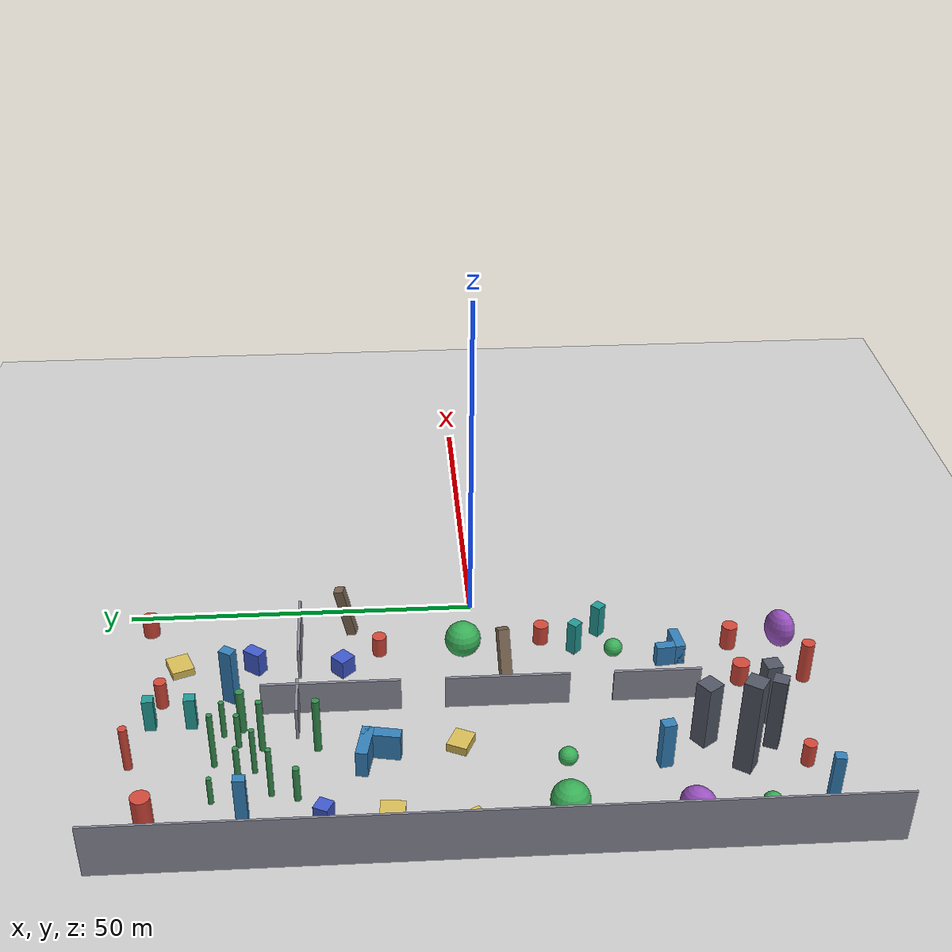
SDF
<sdf version="1.9">
 <world name="dwa_complex">
  <model name="ground_plane">
   <static>true</static>
   <link name="link">
    <collision name="collision">
     <geometry><plane><normal>0 0 1</normal><size>1 1</size></plane></geometry>
    </collision>
    <visual name="visual">
     <geometry><plane><normal>0 0 1</normal><size>110 110</size></plane></geometry>
     <material>
      <ambient>0.8 0.8 0.8 1</ambient>
      <diffuse>0.8 0.8 0.8 1</diffuse>
      <specular>0.8 0.8 0.8 1</specular>
     </material>
    </visual>
    <inertial>
     <mass>1</mass>
     <inertia><ixx>1</ixx><ixy>0</ixy><ixz>0</ixz><iyy>1</iyy><iyz>0</iyz><izz>1</izz></inertia>
    </inertial>
   </link>
  </model>
  <model name="boundary_west">
   <static>true</static>
   <pose>-50.150 0.000 4.000 0.0000 0.0000 0.0000</pose>
   <link name="link">
    <collision name="collision"><geometry><box><size>0.300 100.600 8.000</size></box></geometry></collision>
    <visual name="visual">
     <geometry><box><size>0.300 100.600 8.000</size></box></geometry>
     <material><ambient>0.54 0.54 0.6 1</ambient><diffuse>0.54 0.54 0.6 1</diffuse></material>
    </visual>
   </link>
  </model>
  <model name="barrier_1">
   <static>true</static>
   <pose>-22.000 -24.000 2.500 0.0000 0.0000 1.5708</pose>
   <link name="link">
    <collision name="collision"><geometry><box><size>12.000 0.400 5.000</size></box></geometry></collision>
    <visual name="visual">
     <geometry><box><size>12.000 0.400 5.000</size></box></geometry>
     <material><ambient>0.54 0.54 0.6 1</ambient><diffuse>0.54 0.54 0.6 1</diffuse></material>
    </visual>
   </link>
  </model>
  <model name="barrier_2">
   <static>true</static>
   <pose>-22.000 -3.500 2.500 0.0000 0.0000 1.5708</pose>
   <link name="link">
    <collision name="collision"><geometry><box><size>17.000 0.400 5.000</size></box></geometry></collision>
    <visual name="visual">
     <geometry><box><size>17.000 0.400 5.000</size></box></geometry>
     <material><ambient>0.54 0.54 0.6 1</ambient><diffuse>0.54 0.54 0.6 1</diffuse></material>
    </visual>
   </link>
  </model>
  <model name="barrier_3">
   <static>true</static>
   <pose>-22.000 20.500 2.500 0.0000 0.0000 1.5708</pose>
   <link name="link">
    <collision name="collision"><geometry><box><size>19.000 0.400 5.000</size></box></geometry></collision>
    <visual name="visual">
     <geometry><box><size>19.000 0.400 5.000</size></box></geometry>
     <material><ambient>0.54 0.54 0.6 1</ambient><diffuse>0.54 0.54 0.6 1</diffuse></material>
    </visual>
   </link>
  </model>
  <model name="barrier_4">
   <static>true</static>
   <pose>-24.250 25.000 2.500 0.0000 0.0000 0.0000</pose>
   <link name="link">
    <collision name="collision"><geometry><box><size>6.500 0.400 5.000</size></box></geometry></collision>
    <visual name="visual">
     <geometry><box><size>6.500 0.400 5.000</size></box></geometry>
     <material><ambient>0.54 0.54 0.6 1</ambient><diffuse>0.54 0.54 0.6 1</diffuse></material>
    </visual>
   </link>
  </model>
  <model name="barrier_5">
   <static>true</static>
   <pose>-9.250 25.000 2.500 0.0000 0.0000 0.0000</pose>
   <link name="link">
    <collision name="collision"><geometry><box><size>11.500 0.400 5.000</size></box></geometry></collision>
    <visual name="visual">
     <geometry><box><size>11.500 0.400 5.000</size></box></geometry>
     <material><ambient>0.54 0.54 0.6 1</ambient><diffuse>0.54 0.54 0.6 1</diffuse></material>
    </visual>
   </link>
  </model>
  <model name="tree_1">
   <static>true</static>
   <pose>-37.902 28.097 3.868 0.0000 0.0000 0.0000</pose>
   <link name="link">
    <collision name="collision">
     <geometry><cylinder><radius>0.379</radius><length>7.736</length></cylinder></geometry>
    </collision>
    <visual name="visual">
     <geometry><cylinder><radius>0.379</radius><length>7.736</length></cylinder></geometry>
     <material><ambient>0.2 0.55 0.3 1</ambient><diffuse>0.2 0.55 0.3 1</diffuse></material>
    </visual>
   </link>
  </model>
  <model name="tree_2">
   <static>true</static>
   <pose>-29.216 29.590 4.099 0.0000 0.0000 0.0000</pose>
   <link name="link">
    <collision name="collision">
     <geometry><cylinder><radius>0.442</radius><length>8.199</length></cylinder></geometry>
    </collision>
    <visual name="visual">
     <geometry><cylinder><radius>0.442</radius><length>8.199</length></cylinder></geometry>
     <material><ambient>0.2 0.55 0.3 1</ambient><diffuse>0.2 0.55 0.3 1</diffuse></material>
    </visual>
   </link>
  </model>
  <model name="tree_3">
   <static>true</static>
   <pose>-34.745 28.346 2.506 0.0000 0.0000 0.0000</pose>
   <link name="link">
    <collision name="collision">
     <geometry><cylinder><radius>0.319</radius><length>5.013</length></cylinder></geometry>
    </collision>
    <visual name="visual">
     <geometry><cylinder><radius>0.319</radius><length>5.013</length></cylinder></geometry>
     <material><ambient>0.2 0.55 0.3 1</ambient><diffuse>0.2 0.55 0.3 1</diffuse></material>
    </visual>
   </link>
  </model>
  <model name="tree_4">
   <static>true</static>
   <pose>-32.041 35.730 4.362 0.0000 0.0000 0.0000</pose>
   <link name="link">
    <collision name="collision">
     <geometry><cylinder><radius>0.393</radius><length>8.724</length></cylinder></geometry>
    </collision>
    <visual name="visual">
     <geometry><cylinder><radius>0.393</radius><length>8.724</length></cylinder></geometry>
     <material><ambient>0.2 0.55 0.3 1</ambient><diffuse>0.2 0.55 0.3 1</diffuse></material>
    </visual>
   </link>
  </model>
  <model name="tree_5">
   <static>true</static>
   <pose>-28.489 32.737 2.713 0.0000 0.0000 0.0000</pose>
   <link name="link">
    <collision name="collision">
     <geometry><cylinder><radius>0.398</radius><length>5.426</length></cylinder></geometry>
    </collision>
    <visual name="visual">
     <geometry><cylinder><radius>0.398</radius><length>5.426</length></cylinder></geometry>
     <material><ambient>0.2 0.55 0.3 1</ambient><diffuse>0.2 0.55 0.3 1</diffuse></material>
    </visual>
   </link>
  </model>
  <model name="tree_6">
   <static>true</static>
   <pose>-33.560 30.404 3.612 0.0000 0.0000 0.0000</pose>
   <link name="link">
    <collision name="collision">
     <geometry><cylinder><radius>0.359</radius><length>7.224</length></cylinder></geometry>
    </collision>
    <visual name="visual">
     <geometry><cylinder><radius>0.359</radius><length>7.224</length></cylinder></geometry>
     <material><ambient>0.2 0.55 0.3 1</ambient><diffuse>0.2 0.55 0.3 1</diffuse></material>
    </visual>
   </link>
  </model>
  <model name="tree_7">
   <static>true</static>
   <pose>-38.247 32.039 4.263 0.0000 0.0000 0.0000</pose>
   <link name="link">
    <collision name="collision">
     <geometry><cylinder><radius>0.404</radius><length>8.527</length></cylinder></geometry>
    </collision>
    <visual name="visual">
     <geometry><cylinder><radius>0.404</radius><length>8.527</length></cylinder></geometry>
     <material><ambient>0.2 0.55 0.3 1</ambient><diffuse>0.2 0.55 0.3 1</diffuse></material>
    </visual>
   </link>
  </model>
  <model name="tree_8">
   <static>true</static>
   <pose>-38.838 24.752 2.652 0.0000 0.0000 0.0000</pose>
   <link name="link">
    <collision name="collision">
     <geometry><cylinder><radius>0.459</radius><length>5.304</length></cylinder></geometry>
    </collision>
    <visual name="visual">
     <geometry><cylinder><radius>0.459</radius><length>5.304</length></cylinder></geometry>
     <material><ambient>0.2 0.55 0.3 1</ambient><diffuse>0.2 0.55 0.3 1</diffuse></material>
    </visual>
   </link>
  </model>
  <model name="tree_9">
   <static>true</static>
   <pose>-38.827 35.686 2.096 0.0000 0.0000 0.0000</pose>
   <link name="link">
    <collision name="collision">
     <geometry><cylinder><radius>0.364</radius><length>4.193</length></cylinder></geometry>
    </collision>
    <visual name="visual">
     <geometry><cylinder><radius>0.364</radius><length>4.193</length></cylinder></geometry>
     <material><ambient>0.2 0.55 0.3 1</ambient><diffuse>0.2 0.55 0.3 1</diffuse></material>
    </visual>
   </link>
  </model>
  <model name="tree_10">
   <static>true</static>
   <pose>-26.320 34.809 2.918 0.0000 0.0000 0.0000</pose>
   <link name="link">
    <collision name="collision">
     <geometry><cylinder><radius>0.377</radius><length>5.836</length></cylinder></geometry>
    </collision>
    <visual name="visual">
     <geometry><cylinder><radius>0.377</radius><length>5.836</length></cylinder></geometry>
     <material><ambient>0.2 0.55 0.3 1</ambient><diffuse>0.2 0.55 0.3 1</diffuse></material>
    </visual>
   </link>
  </model>
  <model name="tree_11">
   <static>true</static>
   <pose>-25.369 32.399 3.388 0.0000 0.0000 0.0000</pose>
   <link name="link">
    <collision name="collision">
     <geometry><cylinder><radius>0.584</radius><length>6.776</length></cylinder></geometry>
    </collision>
    <visual name="visual">
     <geometry><cylinder><radius>0.584</radius><length>6.776</length></cylinder></geometry>
     <material><ambient>0.2 0.55 0.3 1</ambient><diffuse>0.2 0.55 0.3 1</diffuse></material>
    </visual>
   </link>
  </model>
  <model name="tree_12">
   <static>true</static>
   <pose>-29.665 22.279 4.211 0.0000 0.0000 0.0000</pose>
   <link name="link">
    <collision name="collision">
     <geometry><cylinder><radius>0.510</radius><length>8.422</length></cylinder></geometry>
    </collision>
    <visual name="visual">
     <geometry><cylinder><radius>0.510</radius><length>8.422</length></cylinder></geometry>
     <material><ambient>0.2 0.55 0.3 1</ambient><diffuse>0.2 0.55 0.3 1</diffuse></material>
    </visual>
   </link>
  </model>
  <model name="tower_7">
   <static>true</static>
   <pose>-27.106 -37.990 4.804 0.0000 0.0000 1.7329</pose>
   <link name="link">
    <collision name="collision"><geometry><box><size>2.167 2.167 9.608</size></box></geometry></collision>
    <visual name="visual">
     <geometry><box><size>2.167 2.167 9.608</size></box></geometry>
     <material><ambient>0.32 0.34 0.4 1</ambient><diffuse>0.32 0.34 0.4 1</diffuse></material>
    </visual>
   </link>
  </model>
  <model name="tower_8">
   <static>true</static>
   <pose>-36.112 -33.279 7.119 0.0000 0.0000 0.9704</pose>
   <link name="link">
    <collision name="collision"><geometry><box><size>2.514 2.514 14.238</size></box></geometry></collision>
    <visual name="visual">
     <geometry><box><size>2.514 2.514 14.238</size></box></geometry>
     <material><ambient>0.32 0.34 0.4 1</ambient><diffuse>0.32 0.34 0.4 1</diffuse></material>
    </visual>
   </link>
  </model>
  <model name="tower_9">
   <static>true</static>
   <pose>-30.899 -28.892 4.843 0.0000 0.0000 0.6084</pose>
   <link name="link">
    <collision name="collision"><geometry><box><size>2.510 2.510 9.686</size></box></geometry></collision>
    <visual name="visual">
     <geometry><box><size>2.510 2.510 9.686</size></box></geometry>
     <material><ambient>0.32 0.34 0.4 1</ambient><diffuse>0.32 0.34 0.4 1</diffuse></material>
    </visual>
   </link>
  </model>
  <model name="tower_10">
   <static>true</static>
   <pose>-32.163 -37.741 5.578 0.0000 0.0000 1.1361</pose>
   <link name="link">
    <collision name="collision"><geometry><box><size>1.942 1.942 11.156</size></box></geometry></collision>
    <visual name="visual">
     <geometry><box><size>1.942 1.942 11.156</size></box></geometry>
     <material><ambient>0.32 0.34 0.4 1</ambient><diffuse>0.32 0.34 0.4 1</diffuse></material>
    </visual>
   </link>
  </model>
  <model name="Lshape_2">
   <static>true</static>
   <pose>-12.994 -27.102 1.576 0 0 0.1046</pose>
   <link name="link">
    <collision name="collision_0">
     <pose>0.000 -1.359 0.000 0 0 0</pose>
     <geometry><box><size>4.110 1.392 3.151</size></box></geometry>
    </collision>
    <visual name="visual_0">
     <pose>0.000 -1.359 0.000 0 0 0</pose>
     <geometry><box><size>4.110 1.392 3.151</size></box></geometry>
     <material><ambient>0.2 0.5 0.72 1</ambient><diffuse>0.2 0.5 0.72 1</diffuse></material>
    </visual>
    <collision name="collision_1">
     <pose>-1.359 0.000 0.000 0 0 0</pose>
     <geometry><box><size>1.392 4.110 3.151</size></box></geometry>
    </collision>
    <visual name="visual_1">
     <pose>-1.359 0.000 0.000 0 0 0</pose>
     <geometry><box><size>1.392 4.110 3.151</size></box></geometry>
     <material><ambient>0.2 0.5 0.72 1</ambient><diffuse>0.2 0.5 0.72 1</diffuse></material>
    </visual>
   </link>
  </model>
  <model name="Lshape_4">
   <static>true</static>
   <pose>-32.966 14.256 1.986 0 0 2.9465</pose>
   <link name="link">
    <collision name="collision_0">
     <pose>0.000 -1.833 0.000 0 0 0</pose>
     <geometry><box><size>5.293 1.626 3.972</size></box></geometry>
    </collision>
    <visual name="visual_0">
     <pose>0.000 -1.833 0.000 0 0 0</pose>
     <geometry><box><size>5.293 1.626 3.972</size></box></geometry>
     <material><ambient>0.2 0.5 0.72 1</ambient><diffuse>0.2 0.5 0.72 1</diffuse></material>
    </visual>
    <collision name="collision_1">
     <pose>-1.833 0.000 0.000 0 0 0</pose>
     <geometry><box><size>1.626 5.293 3.972</size></box></geometry>
    </collision>
    <visual name="visual_1">
     <pose>-1.833 0.000 0.000 0 0 0</pose>
     <geometry><box><size>1.626 5.293 3.972</size></box></geometry>
     <material><ambient>0.2 0.5 0.72 1</ambient><diffuse>0.2 0.5 0.72 1</diffuse></material>
    </visual>
   </link>
  </model>
  <model name="lean_2">
   <static>true</static>
   <pose>-4.768 18.411 3.877 0.0000 0.2310 1.3671</pose>
   <link name="link">
    <collision name="collision"><geometry><box><size>1.416 1.497 7.632</size></box></geometry></collision>
    <visual name="visual">
     <geometry><box><size>1.416 1.497 7.632</size></box></geometry>
     <material><ambient>0.48 0.4 0.32 1</ambient><diffuse>0.48 0.4 0.32 1</diffuse></material>
    </visual>
   </link>
  </model>
  <model name="lean_4">
   <static>true</static>
   <pose>-15.969 -3.569 3.813 0.0000 0.3619 0.1855</pose>
   <link name="link">
    <collision name="collision"><geometry><box><size>1.458 1.586 7.602</size></box></geometry></collision>
    <visual name="visual">
     <geometry><box><size>1.458 1.586 7.602</size></box></geometry>
     <material><ambient>0.48 0.4 0.32 1</ambient><diffuse>0.48 0.4 0.32 1</diffuse></material>
    </visual>
   </link>
  </model>
  <model name="gate_3">
   <static>true</static>
   <pose>-10.945 -14.055 2.500 0.0000 0.0000 0.7854</pose>
   <link name="link">
    <collision name="collision"><geometry><box><size>1.500 1.500 5.000</size></box></geometry></collision>
    <visual name="visual">
     <geometry><box><size>1.500 1.500 5.000</size></box></geometry>
     <material><ambient>0.13 0.6 0.58 1</ambient><diffuse>0.13 0.6 0.58 1</diffuse></material>
    </visual>
   </link>
  </model>
  <model name="gate_4">
   <static>true</static>
   <pose>-7.055 -17.945 2.500 0.0000 0.0000 0.7854</pose>
   <link name="link">
    <collision name="collision"><geometry><box><size>1.500 1.500 5.000</size></box></geometry></collision>
    <visual name="visual">
     <geometry><box><size>1.500 1.500 5.000</size></box></geometry>
     <material><ambient>0.13 0.6 0.58 1</ambient><diffuse>0.13 0.6 0.58 1</diffuse></material>
    </visual>
   </link>
  </model>
  <model name="gate_7">
   <static>true</static>
   <pose>-24.000 44.750 2.500 0.0000 0.0000 0.0000</pose>
   <link name="link">
    <collision name="collision"><geometry><box><size>1.500 1.500 5.000</size></box></geometry></collision>
    <visual name="visual">
     <geometry><box><size>1.500 1.500 5.000</size></box></geometry>
     <material><ambient>0.13 0.6 0.58 1</ambient><diffuse>0.13 0.6 0.58 1</diffuse></material>
    </visual>
   </link>
  </model>
  <model name="gate_8">
   <static>true</static>
   <pose>-24.000 39.250 2.500 0.0000 0.0000 0.0000</pose>
   <link name="link">
    <collision name="collision"><geometry><box><size>1.500 1.500 5.000</size></box></geometry></collision>
    <visual name="visual">
     <geometry><box><size>1.500 1.500 5.000</size></box></geometry>
     <material><ambient>0.13 0.6 0.58 1</ambient><diffuse>0.13 0.6 0.58 1</diffuse></material>
    </visual>
   </link>
  </model>
  <model name="pillar_1">
   <static>true</static>
   <pose>-43.098 -42.934 3.830 0.0000 0.0000 1.4220</pose>
   <link name="link">
    <collision name="collision"><geometry><box><size>1.433 1.287 7.660</size></box></geometry></collision>
    <visual name="visual">
     <geometry><box><size>1.433 1.287 7.660</size></box></geometry>
     <material><ambient>0.2 0.5 0.72 1</ambient><diffuse>0.2 0.5 0.72 1</diffuse></material>
    </visual>
   </link>
  </model>
  <model name="sphere_1">
   <static>true</static>
   <pose>-44.061 -34.928 1.280 0.0000 0.0000 0.0000</pose>
   <link name="link">
    <collision name="collision"><geometry><sphere><radius>1.280</radius></sphere></geometry></collision>
    <visual name="visual">
     <geometry><sphere><radius>1.280</radius></sphere></geometry>
     <material><ambient>0.22 0.68 0.34 1</ambient><diffuse>0.22 0.68 0.34 1</diffuse></material>
    </visual>
   </link>
  </model>
  <model name="ellipsoid_1">
   <static>true</static>
   <pose>-44.810 -25.223 2.327 0.0000 0.0000 1.0352</pose>
   <link name="link">
    <collision name="collision">
     <geometry><ellipsoid><radii>2.356 1.816 2.327</radii></ellipsoid></geometry>
    </collision>
    <visual name="visual">
     <geometry><ellipsoid><radii>2.356 1.816 2.327</radii></ellipsoid></geometry>
     <material><ambient>0.6 0.32 0.75 1</ambient><diffuse>0.6 0.32 0.75 1</diffuse></material>
    </visual>
   </link>
  </model>
  <model name="boulder_1">
   <static>true</static>
   <pose>-43.564 -9.375 2.568 0.0000 0.0000 0.0000</pose>
   <link name="link">
    <collision name="collision"><geometry><sphere><radius>2.568</radius></sphere></geometry></collision>
    <visual name="visual">
     <geometry><sphere><radius>2.568</radius></sphere></geometry>
     <material><ambient>0.22 0.68 0.34 1</ambient><diffuse>0.22 0.68 0.34 1</diffuse></material>
    </visual>
   </link>
  </model>
  <model name="platform_1">
   <static>true</static>
   <pose>-44.536 3.025 0.426 0.0000 0.0000 2.0568</pose>
   <link name="link">
    <collision name="collision"><geometry><box><size>4.127 3.202 0.852</size></box></geometry></collision>
    <visual name="visual">
     <geometry><box><size>4.127 3.202 0.852</size></box></geometry>
     <material><ambient>0.85 0.74 0.34 1</ambient><diffuse>0.85 0.74 0.34 1</diffuse></material>
    </visual>
   </link>
  </model>
  <model name="platform_2">
   <static>true</static>
   <pose>-42.531 12.848 0.287 0.0000 0.0000 3.0474</pose>
   <link name="link">
    <collision name="collision"><geometry><box><size>4.412 3.275 0.573</size></box></geometry></collision>
    <visual name="visual">
     <geometry><box><size>4.412 3.275 0.573</size></box></geometry>
     <material><ambient>0.85 0.74 0.34 1</ambient><diffuse>0.85 0.74 0.34 1</diffuse></material>
    </visual>
   </link>
  </model>
  <model name="box_1">
   <static>true</static>
   <pose>-43.053 21.336 1.531 0.0000 0.0000 1.1088</pose>
   <link name="link">
    <collision name="collision"><geometry><box><size>2.029 2.059 3.062</size></box></geometry></collision>
    <visual name="visual">
     <geometry><box><size>2.029 2.059 3.062</size></box></geometry>
     <material><ambient>0.25 0.35 0.8 1</ambient><diffuse>0.25 0.35 0.8 1</diffuse></material>
    </visual>
   </link>
  </model>
  <model name="pillar_2">
   <static>true</static>
   <pose>-42.296 31.509 3.648 0.0000 0.0000 3.1110</pose>
   <link name="link">
    <collision name="collision"><geometry><box><size>1.280 1.569 7.297</size></box></geometry></collision>
    <visual name="visual">
     <geometry><box><size>1.280 1.569 7.297</size></box></geometry>
     <material><ambient>0.2 0.5 0.72 1</ambient><diffuse>0.2 0.5 0.72 1</diffuse></material>
    </visual>
   </link>
  </model>
  <model name="cyl_1">
   <static>true</static>
   <pose>-42.009 43.819 2.273 0.0000 0.0000 0.0000</pose>
   <link name="link">
    <collision name="collision">
     <geometry><cylinder><radius>1.287</radius><length>4.546</length></cylinder></geometry>
    </collision>
    <visual name="visual">
     <geometry><cylinder><radius>1.287</radius><length>4.546</length></cylinder></geometry>
     <material><ambient>0.82 0.28 0.22 1</ambient><diffuse>0.82 0.28 0.22 1</diffuse></material>
    </visual>
   </link>
  </model>
  <model name="cyl_2">
   <static>true</static>
   <pose>-36.070 -41.578 1.717 0.0000 0.0000 0.0000</pose>
   <link name="link">
    <collision name="collision">
     <geometry><cylinder><radius>0.895</radius><length>3.433</length></cylinder></geometry>
    </collision>
    <visual name="visual">
     <geometry><cylinder><radius>0.895</radius><length>3.433</length></cylinder></geometry>
     <material><ambient>0.82 0.28 0.22 1</ambient><diffuse>0.82 0.28 0.22 1</diffuse></material>
    </visual>
   </link>
  </model>
  <model name="pillar_3">
   <static>true</static>
   <pose>-35.089 -22.932 3.518 0.0000 0.0000 1.7456</pose>
   <link name="link">
    <collision name="collision"><geometry><box><size>1.765 1.531 7.037</size></box></geometry></collision>
    <visual name="visual">
     <geometry><box><size>1.765 1.531 7.037</size></box></geometry>
     <material><ambient>0.2 0.5 0.72 1</ambient><diffuse>0.2 0.5 0.72 1</diffuse></material>
    </visual>
   </link>
  </model>
  <model name="sphere_2">
   <static>true</static>
   <pose>-34.394 -10.310 1.301 0.0000 0.0000 0.0000</pose>
   <link name="link">
    <collision name="collision"><geometry><sphere><radius>1.301</radius></sphere></geometry></collision>
    <visual name="visual">
     <geometry><sphere><radius>1.301</radius></sphere></geometry>
     <material><ambient>0.22 0.68 0.34 1</ambient><diffuse>0.22 0.68 0.34 1</diffuse></material>
    </visual>
   </link>
  </model>
  <model name="platform_3">
   <static>true</static>
   <pose>-30.083 3.392 0.630 0.0000 0.0000 1.1269</pose>
   <link name="link">
    <collision name="collision"><geometry><box><size>2.825 3.439 1.259</size></box></geometry></collision>
    <visual name="visual">
     <geometry><box><size>2.825 3.439 1.259</size></box></geometry>
     <material><ambient>0.85 0.74 0.34 1</ambient><diffuse>0.85 0.74 0.34 1</diffuse></material>
    </visual>
   </link>
  </model>
  <model name="column_1">
   <static>true</static>
   <pose>-31.727 46.927 3.374 0.0000 0.0000 0.0000</pose>
   <link name="link">
    <collision name="collision">
     <geometry><cylinder><radius>0.586</radius><length>6.748</length></cylinder></geometry>
    </collision>
    <visual name="visual">
     <geometry><cylinder><radius>0.586</radius><length>6.748</length></cylinder></geometry>
     <material><ambient>0.82 0.28 0.22 1</ambient><diffuse>0.82 0.28 0.22 1</diffuse></material>
    </visual>
   </link>
  </model>
  <model name="column_2">
   <static>true</static>
   <pose>-19.112 -45.353 3.171 0.0000 0.0000 0.0000</pose>
   <link name="link">
    <collision name="collision">
     <geometry><cylinder><radius>0.920</radius><length>6.342</length></cylinder></geometry>
    </collision>
    <visual name="visual">
     <geometry><cylinder><radius>0.920</radius><length>6.342</length></cylinder></geometry>
     <material><ambient>0.82 0.28 0.22 1</ambient><diffuse>0.82 0.28 0.22 1</diffuse></material>
    </visual>
   </link>
  </model>
  <model name="cyl_3">
   <static>true</static>
   <pose>-19.120 -36.295 1.652 0.0000 0.0000 0.0000</pose>
   <link name="link">
    <collision name="collision">
     <geometry><cylinder><radius>1.199</radius><length>3.304</length></cylinder></geometry>
    </collision>
    <visual name="visual">
     <geometry><cylinder><radius>1.199</radius><length>3.304</length></cylinder></geometry>
     <material><ambient>0.82 0.28 0.22 1</ambient><diffuse>0.82 0.28 0.22 1</diffuse></material>
    </visual>
   </link>
  </model>
  <model name="pillar_4">
   <static>true</static>
   <pose>-18.846 34.251 4.296 0.0000 0.0000 2.6019</pose>
   <link name="link">
    <collision name="collision"><geometry><box><size>1.470 1.908 8.591</size></box></geometry></collision>
    <visual name="visual">
     <geometry><box><size>1.470 1.908 8.591</size></box></geometry>
     <material><ambient>0.2 0.5 0.72 1</ambient><diffuse>0.2 0.5 0.72 1</diffuse></material>
    </visual>
   </link>
  </model>
  <model name="cyl_4">
   <static>true</static>
   <pose>-19.556 43.629 2.101 0.0000 0.0000 0.0000</pose>
   <link name="link">
    <collision name="collision">
     <geometry><cylinder><radius>0.859</radius><length>4.202</length></cylinder></geometry>
    </collision>
    <visual name="visual">
     <geometry><cylinder><radius>0.859</radius><length>4.202</length></cylinder></geometry>
     <material><ambient>0.82 0.28 0.22 1</ambient><diffuse>0.82 0.28 0.22 1</diffuse></material>
    </visual>
   </link>
  </model>
  <model name="ellipsoid_2">
   <static>true</static>
   <pose>-11.333 -43.621 2.946 0.0000 0.0000 0.6281</pose>
   <link name="link">
    <collision name="collision">
     <geometry><ellipsoid><radii>2.384 1.717 2.946</radii></ellipsoid></geometry>
    </collision>
    <visual name="visual">
     <geometry><ellipsoid><radii>2.384 1.717 2.946</radii></ellipsoid></geometry>
     <material><ambient>0.6 0.32 0.75 1</ambient><diffuse>0.6 0.32 0.75 1</diffuse></material>
    </visual>
   </link>
  </model>
  <model name="cyl_5">
   <static>true</static>
   <pose>-11.197 -36.369 1.850 0.0000 0.0000 0.0000</pose>
   <link name="link">
    <collision name="collision">
     <geometry><cylinder><radius>1.102</radius><length>3.700</length></cylinder></geometry>
    </collision>
    <visual name="visual">
     <geometry><cylinder><radius>1.102</radius><length>3.700</length></cylinder></geometry>
     <material><ambient>0.82 0.28 0.22 1</ambient><diffuse>0.82 0.28 0.22 1</diffuse></material>
    </visual>
   </link>
  </model>
  <model name="sphere_3">
   <static>true</static>
   <pose>-12.312 -19.532 1.324 0.0000 0.0000 0.0000</pose>
   <link name="link">
    <collision name="collision"><geometry><sphere><radius>1.324</radius></sphere></geometry></collision>
    <visual name="visual">
     <geometry><sphere><radius>1.324</radius></sphere></geometry>
     <material><ambient>0.22 0.68 0.34 1</ambient><diffuse>0.22 0.68 0.34 1</diffuse></material>
    </visual>
   </link>
  </model>
  <model name="cyl_6">
   <static>true</static>
   <pose>-8.530 -9.566 1.512 0.0000 0.0000 0.0000</pose>
   <link name="link">
    <collision name="collision">
     <geometry><cylinder><radius>1.085</radius><length>3.025</length></cylinder></geometry>
    </collision>
    <visual name="visual">
     <geometry><cylinder><radius>1.085</radius><length>3.025</length></cylinder></geometry>
     <material><ambient>0.82 0.28 0.22 1</ambient><diffuse>0.82 0.28 0.22 1</diffuse></material>
    </visual>
   </link>
  </model>
  <model name="boulder_2">
   <static>true</static>
   <pose>-10.606 1.838 2.565 0.0000 0.0000 0.0000</pose>
   <link name="link">
    <collision name="collision"><geometry><sphere><radius>2.565</radius></sphere></geometry></collision>
    <visual name="visual">
     <geometry><sphere><radius>2.565</radius></sphere></geometry>
     <material><ambient>0.22 0.68 0.34 1</ambient><diffuse>0.22 0.68 0.34 1</diffuse></material>
    </visual>
   </link>
  </model>
  <model name="cyl_7">
   <static>true</static>
   <pose>-9.865 13.717 1.503 0.0000 0.0000 0.0000</pose>
   <link name="link">
    <collision name="collision">
     <geometry><cylinder><radius>1.005</radius><length>3.006</length></cylinder></geometry>
    </collision>
    <visual name="visual">
     <geometry><cylinder><radius>1.005</radius><length>3.006</length></cylinder></geometry>
     <material><ambient>0.82 0.28 0.22 1</ambient><diffuse>0.82 0.28 0.22 1</diffuse></material>
    </visual>
   </link>
  </model>
  <model name="box_2">
   <static>true</static>
   <pose>-13.766 18.914 1.366 0.0000 0.0000 0.7688</pose>
   <link name="link">
    <collision name="collision"><geometry><box><size>2.364 2.414 2.733</size></box></geometry></collision>
    <visual name="visual">
     <geometry><box><size>2.364 2.414 2.733</size></box></geometry>
     <material><ambient>0.25 0.35 0.8 1</ambient><diffuse>0.25 0.35 0.8 1</diffuse></material>
    </visual>
   </link>
  </model>
  <model name="box_3">
   <static>true</static>
   <pose>-12.698 31.222 1.765 0.0000 0.0000 0.9371</pose>
   <link name="link">
    <collision name="collision"><geometry><box><size>2.653 1.753 3.529</size></box></geometry></collision>
    <visual name="visual">
     <geometry><box><size>2.653 1.753 3.529</size></box></geometry>
     <material><ambient>0.25 0.35 0.8 1</ambient><diffuse>0.25 0.35 0.8 1</diffuse></material>
    </visual>
   </link>
  </model>
  <model name="platform_4">
   <static>true</static>
   <pose>-12.077 41.865 0.583 0.0000 0.0000 1.9370</pose>
   <link name="link">
    <collision name="collision"><geometry><box><size>3.171 3.661 1.166</size></box></geometry></collision>
    <visual name="visual">
     <geometry><box><size>3.171 3.661 1.166</size></box></geometry>
     <material><ambient>0.85 0.74 0.34 1</ambient><diffuse>0.85 0.74 0.34 1</diffuse></material>
    </visual>
   </link>
  </model>
  <model name="cyl_9">
   <static>true</static>
   <pose>-3.498 46.695 1.529 0.0000 0.0000 0.0000</pose>
   <link name="link">
    <collision name="collision">
     <geometry><cylinder><radius>1.178</radius><length>3.058</length></cylinder></geometry>
    </collision>
    <visual name="visual">
     <geometry><cylinder><radius>1.178</radius><length>3.058</length></cylinder></geometry>
     <material><ambient>0.82 0.28 0.22 1</ambient><diffuse>0.82 0.28 0.22 1</diffuse></material>
    </visual>
   </link>
  </model>
 </world>
</sdf>
